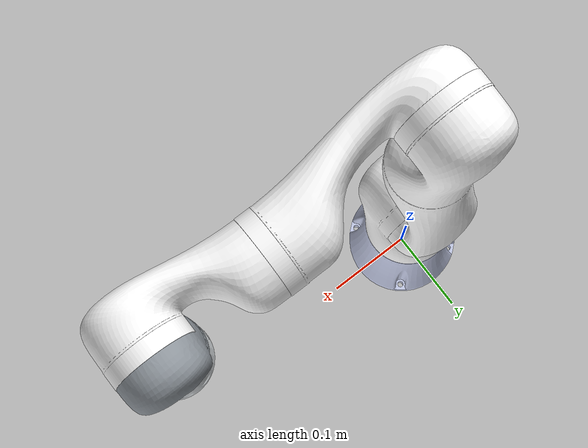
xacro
<?xml version="1.0"?>
<robot xmlns:xacro="http://www.ros.org/wiki/xacro" name="TCB610_06N">
    <xacro:arg name="initial_positions_file" default="initial_positions.yaml" />

    <!-- Import TCB610_06N urdf file -->
    <xacro:include filename="$(find tl_robot_description)/urdf/TCB610_06N.urdf" />

    <!-- Import control_xacro -->
    <xacro:include filename="TCB610_06N.ros2_control.xacro" />

    <xacro:TCB610_06N_ros2_control name="TLHardware" initial_positions_file="$(arg initial_positions_file)"/>

</robot>

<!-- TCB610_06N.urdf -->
<robot name="TCB610_06N">
    <mujoco>
        <compiler meshdir="../meshes/TCB610_06N" discardvisual="false"/>
    </mujoco>
    <link name="tl_robot_link0">
        <inertial>
            <origin xyz="0.000197158335101408 -5.65942773516878E-05 0.0376676214851066" rpy="0 0 0" />
            <mass value="0.749899458922545" />
            <inertia ixx="0.00156235136176764" ixy="-6.48262732748015E-08" ixz="4.21713907756751E-05" iyy="0.00143055291291807" iyz="-1.4740224733695E-07" izz="0.00181952433904877" />
        </inertial>
        <visual>
            <origin xyz="0 0 0" rpy="0 0 0" />
            <geometry>
                <mesh filename="package://tl_robot_description/meshes/TCB610_06N/tl_robot_link0.STL" />
            </geometry>
            <material name="">
                <color rgba="0.792156862745098 0.819607843137255 0.933333333333333 1" />
            </material>
        </visual>
        <collision>
            <origin xyz="0 0 0" rpy="0 0 0" />
            <geometry>
                <mesh filename="package://tl_robot_description/meshes/TCB610_06N/tl_robot_link0.STL" />
            </geometry>
        </collision>
    </link>
    <link name="tl_robot_link1">
        <inertial>
            <origin xyz="-3.22169620622034E-06 -0.0151242570890185 0.0705019653501001" rpy="0 0 0" />
            <mass value="0.518481282081828" />
            <inertia ixx="0.00167110041898517" ixy="1.56212363051667E-07" ixz="-1.54670410912784E-07" iyy="0.00175701064773447" iyz="0.000263613286475281" izz="0.00078448162552415" />
        </inertial>
        <visual>
            <origin xyz="0 0 0" rpy="0 0 0" />
            <geometry>
                <mesh filename="package://tl_robot_description/meshes/TCB610_06N/tl_robot_link1.STL" />
            </geometry>
            <material name="">
                <color rgba="1 1 1 1" />
            </material>
        </visual>
        <collision>
            <origin xyz="0 0 0" rpy="0 0 0" />
            <geometry>
                <mesh filename="package://tl_robot_description/meshes/TCB610_06N/tl_robot_link1.STL" />
            </geometry>
        </collision>
    </link>
    <joint name="tl_robot_joint1" type="revolute">
        <origin xyz="0 0 0.1305" rpy="0 0 0" />
        <parent link="tl_robot_link0" />
        <child link="tl_robot_link1" />
        <axis xyz="0 0 1" />
        <limit lower="-3.141592654" upper="3.141592654" effort="0" velocity="0" />
    </joint>
    <link name="tl_robot_link2">
        <inertial>
            <origin xyz="-3.64948803709113E-06 -0.15878316508675 0.00258163777686799" rpy="0 0 0" />
            <mass value="0.922466553994291" />
            <inertia ixx="0.00326663921530272" ixy="-8.08050575635626E-09" ixz="-1.47598477607018E-07" iyy="0.00102266010722135" iyz="-4.44984199306338E-05" izz="0.00339452282892035" />
        </inertial>
        <visual>
            <origin xyz="0 0 0" rpy="0 0 0" />
            <geometry>
                <mesh filename="package://tl_robot_description/meshes/TCB610_06N/tl_robot_link2.STL" />
            </geometry>
            <material name="">
                <color rgba="1 1 1 1" />
            </material>
        </visual>
        <collision>
            <origin xyz="0 0 0" rpy="0 0 0" />
            <geometry>
                <mesh filename="package://tl_robot_description/meshes/TCB610_06N/tl_robot_link2.STL" />
            </geometry>
        </collision>
    </link>
    <joint name="tl_robot_joint2" type="revolute">
        <origin xyz="0 0.016 0.1315" rpy="-1.5708 0 0" />
        <parent link="tl_robot_link1" />
        <child link="tl_robot_link2" />
        <axis xyz="0 0 -1" />
        <limit lower="-2.35619449" upper="2.35619449" effort="0" velocity="0" />
    </joint>
    <link name="tl_robot_link3">
        <inertial>
            <origin xyz="2.78354237109954E-06 0.0694960867121006 0.00637377402709792" rpy="0 0 0" />
            <mass value="0.396498595803028" />
            <inertia ixx="0.00137497380584233" ixy="7.68580314688229E-08" ixz="2.54610387073722E-08" iyy="0.000357925421554553" iyz="0.000211759769095163" izz="0.00141757729346042" />
        </inertial>
        <visual>
            <origin xyz="0 0 0" rpy="0 0 0" />
            <geometry>
                <mesh filename="package://tl_robot_description/meshes/TCB610_06N/tl_robot_link3.STL" />
            </geometry>
            <material name="">
                <color rgba="1 1 1 1" />
            </material>
        </visual>
        <collision>
            <origin xyz="0 0 0" rpy="0 0 0" />
            <geometry>
                <mesh filename="package://tl_robot_description/meshes/TCB610_06N/tl_robot_link3.STL" />
            </geometry>
        </collision>
    </link>
    <joint name="tl_robot_joint3" type="revolute">
        <origin xyz="0 -0.3205 -0.0295" rpy="-3.1416 0 1.5708" />
        <parent link="tl_robot_link2" />
        <child link="tl_robot_link3" />
        <axis xyz="0 0 1" />
        <limit lower="-0.959931089" upper="4.101523742" effort="0" velocity="0" />
    </joint>
    <link name="tl_robot_link4">
        <inertial>
            <origin xyz="-3.40933814129099E-06 -0.0133244789122422 0.0587132278152935" rpy="0 0 0" />
            <mass value="0.244288838248205" />
            <inertia ixx="0.000507361499420707" ixy="3.14094200860272E-08" ixz="-1.10052697249875E-07" iyy="0.000522024117409157" iyz="8.94126964826422E-05" izz="0.00020297105617683" />
        </inertial>
        <visual>
            <origin xyz="0 0 0" rpy="0 0 0" />
            <geometry>
                <mesh filename="package://tl_robot_description/meshes/TCB610_06N/tl_robot_link4.STL" />
            </geometry>
            <material name="">
                <color rgba="1 1 1 1" />
            </material>
        </visual>
        <collision>
            <origin xyz="0 0 0" rpy="0 0 0" />
            <geometry>
                <mesh filename="package://tl_robot_description/meshes/TCB610_06N/tl_robot_link4.STL" />
            </geometry>
        </collision>
    </link>
    <joint name="tl_robot_joint4" type="revolute">
        <origin xyz="0 0.1745 -0.0135" rpy="-1.5708 0 0" />
        <parent link="tl_robot_link3" />
        <child link="tl_robot_link4" />
        <axis xyz="0 0 1" />
        <limit lower="-3.141592654" upper="3.141592654" effort="0" velocity="0" />
    </joint>
    <link name="tl_robot_link5">
        <inertial>
            <origin xyz="-1.40320481653003E-05 -0.0434236898124816 0.00052679877060258" rpy="0 0 0" />
            <mass value="0.248665741580514" />
            <inertia ixx="0.000435366365640956" ixy="1.02578029161429E-07" ixz="3.83958961826191E-08" iyy="0.000223309836077531" iyz="-9.15144352364642E-05" izz="0.000440491062715861" />
        </inertial>
        <visual>
            <origin xyz="0 0 0" rpy="0 0 0" />
            <geometry>
                <mesh filename="package://tl_robot_description/meshes/TCB610_06N/tl_robot_link5.STL" />
            </geometry>
            <material name="">
                <color rgba="0.568627450980392 0.596078431372549 0.623529411764706 1" />
            </material>
        </visual>
        <collision>
            <origin xyz="0 0 0" rpy="0 0 0" />
            <geometry>
                <mesh filename="package://tl_robot_description/meshes/TCB610_06N/tl_robot_link5.STL" />
            </geometry>
        </collision>
    </link>
    <joint name="tl_robot_joint5" type="revolute">
        <origin xyz="0 0.0145 0.105" rpy="-1.5708 1.5708 0" />
        <parent link="tl_robot_link4" />
        <child link="tl_robot_link5" />
        <axis xyz="0 0 1" />
        <limit lower="-3.752457892" upper="0.610865238" effort="0" velocity="0" />
    </joint>
    <link name="tl_robot_link6">
        <inertial>
            <origin xyz="8.18734378994135E-06 9.1246482065654E-05 0.0267686825888341" rpy="0 0 0" />
            <mass value="0.222487041141641" />
            <inertia ixx="0.000135311205902358" ixy="-5.82503171377999E-08" ixz="-1.88841459723531E-09" iyy="0.000134459672909182" iyz="-1.23915005752652E-08" izz="0.000181050255328463" />
        </inertial>
        <visual>
            <origin xyz="0 0 0" rpy="0 0 0" />
            <geometry>
                <mesh filename="package://tl_robot_description/meshes/TCB610_06N/tl_robot_link6.STL" />
            </geometry>
            <material name="">
                <color rgba="0.898039215686275 0.917647058823529 0.929411764705882 1" />
            </material>
        </visual>
        <collision>
            <origin xyz="0 0 0" rpy="0 0 0" />
            <geometry>
                <mesh filename="package://tl_robot_description/meshes/TCB610_06N/tl_robot_link6.STL" />
            </geometry>
        </collision>
    </link>
    <joint name="tl_robot_joint6" type="revolute">
        <origin xyz="0 -0.1145 -0.0145" rpy="1.5708 0 0" />
        <parent link="tl_robot_link5" />
        <child link="tl_robot_link6" />
        <axis xyz="0 0 1" />
        <limit lower="-3.141592654" upper="3.141592654" effort="0" velocity="0" />
    </joint>
    <!-- 修正末端180度偏差的虚拟关节和连杆 -->
    <joint name="tl_robot_joint_end" type="fixed">
        <origin xyz="0 0 0" rpy="0 0 3.14159" />
        <!-- 绕Z轴旋转180度修正 -->
        <parent link="tl_robot_link6" />
        <child link="tl_robot_link_end" />
        <axis xyz="0 0 1" />
    </joint>

    <link name="tl_robot_link_end">
        <inertial>
            <origin xyz="0 0 0" rpy="0 0 0" />
            <mass value="0.001" />
            <inertia ixx="1e-6" ixy="0" ixz="0" iyy="1e-6" iyz="0" izz="1e-6" />
        </inertial>
        <visual>
            <origin xyz="0 0 0" rpy="0 0 0" />
            <geometry>
                <box size="0.01 0.01 0.01" />
                <!-- 小方块用于可视化 -->
            </geometry>
            <material name="eef_color">
                <color rgba="1 0 0 0.5" />
                <!-- 红色半透明 -->
            </material>
        </visual>
        <collision>
            <origin xyz="0 0 0" rpy="0 0 0" />
            <geometry>
                <box size="0.001 0.001 0.001" />
                <!-- 很小的碰撞体 -->
            </geometry>
        </collision>
    </link>
</robot>
